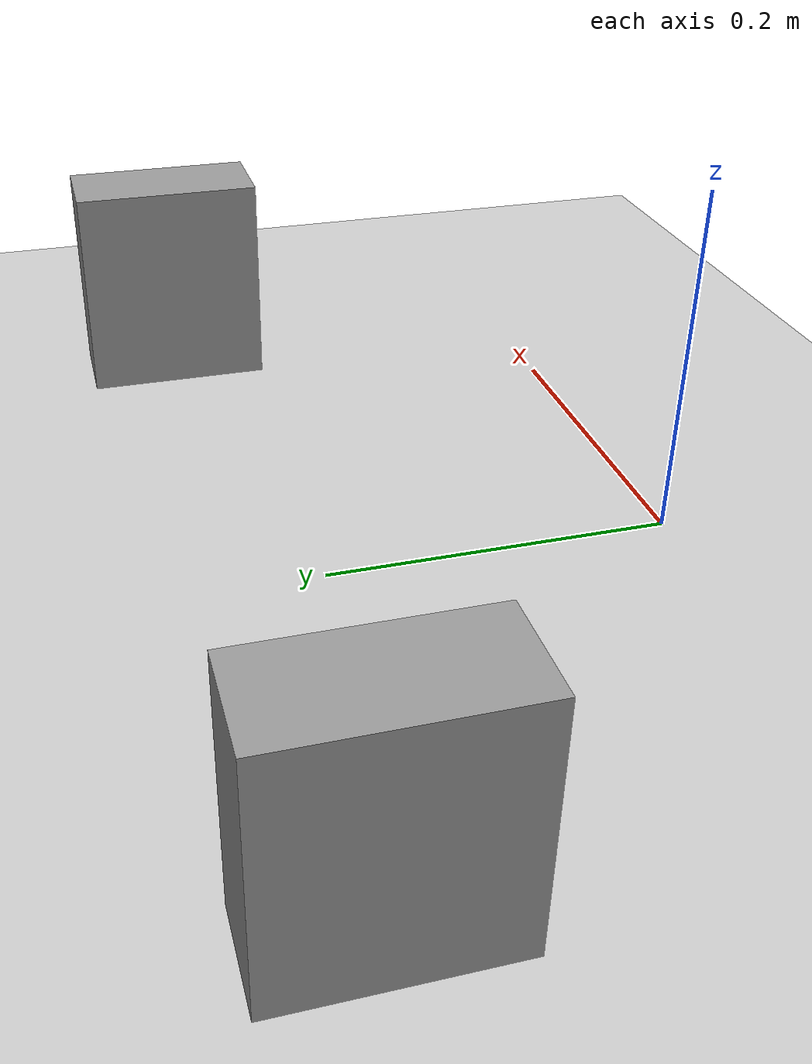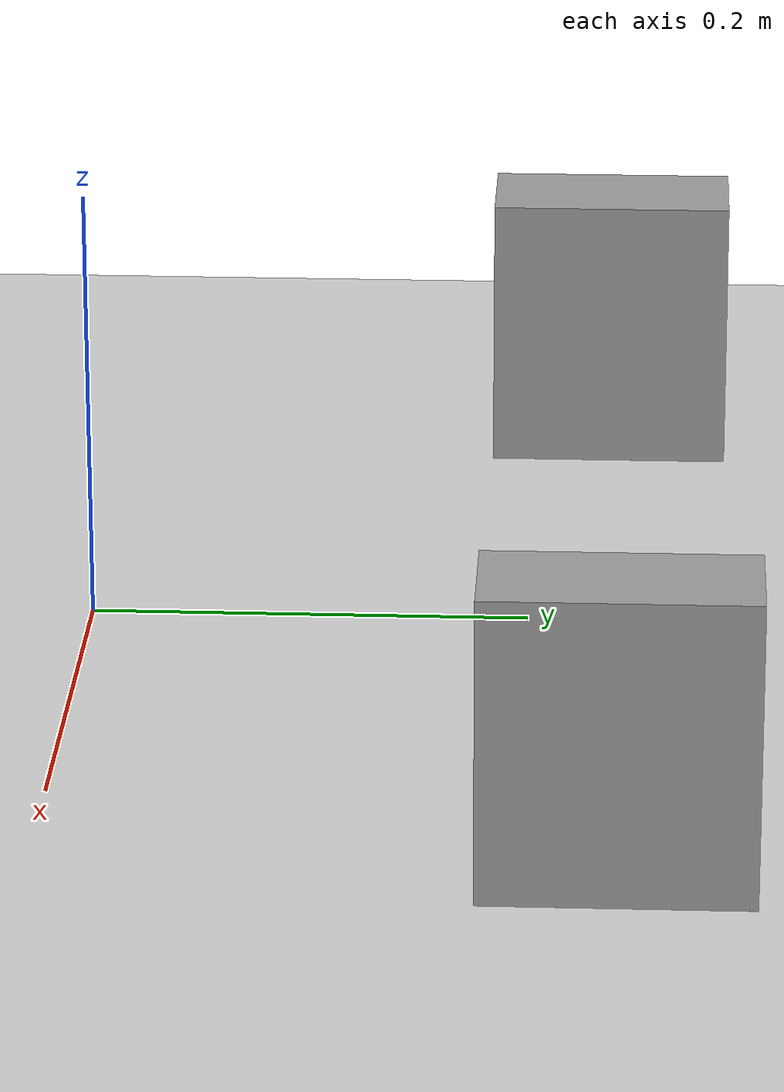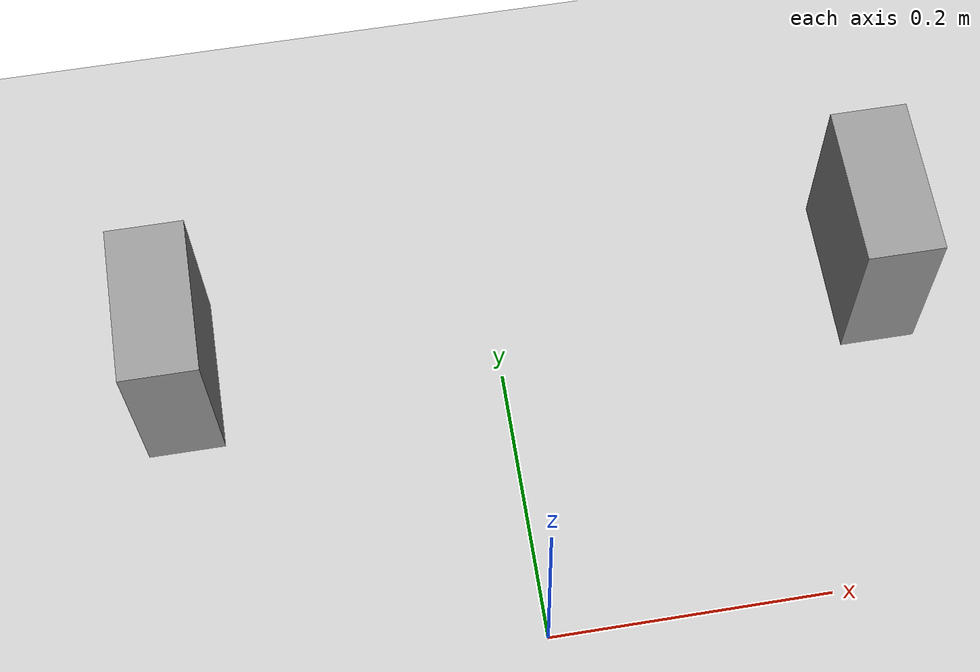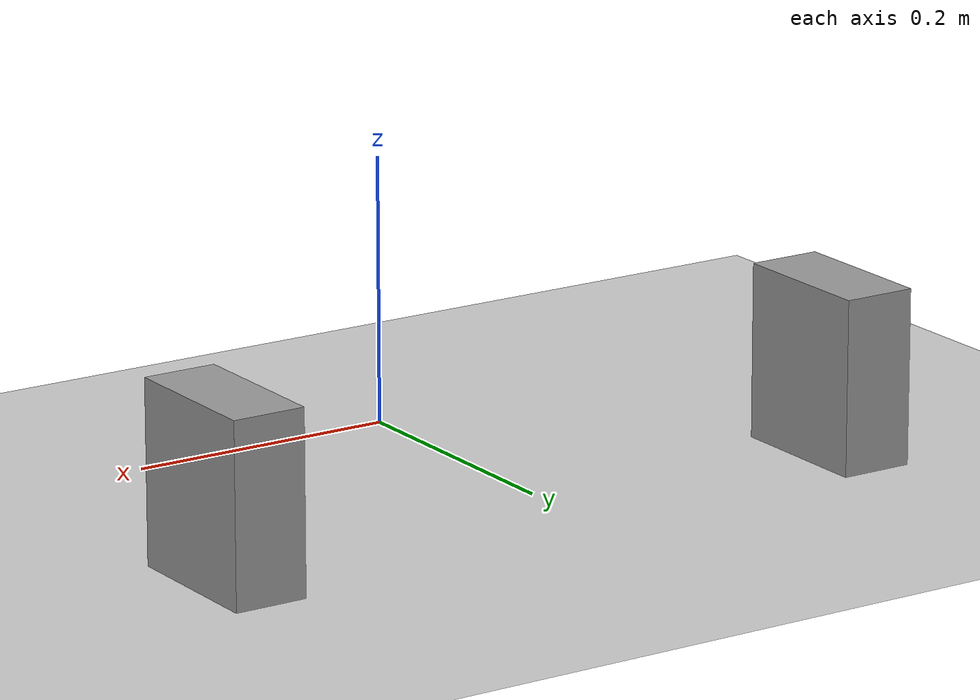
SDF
<sdf version="1.7">
 <world name="gazebo_boxes">
  <light name="sun" type="directional">
   <pose>0 0 10 0 -0 0</pose>
   <diffuse>0.8 0.8 0.8 1</diffuse>
   <specular>0.2 0.2 0.2 1</specular>
   <attenuation>
    <range>1000</range>
    <constant>0.9</constant>
    <linear>0.01</linear>
    <quadratic>0.001</quadratic>
   </attenuation>
   <direction>-0.5 0.1 -0.9</direction>
   <spot><inner_angle>0</inner_angle><outer_angle>0</outer_angle><falloff>0</falloff></spot>
  </light>
  <model name="ground_plane">
   <static>1</static>
   <link name="link">
    <collision name="collision">
     <geometry><plane><normal>0 0 1</normal><size>100 100</size></plane></geometry>
     <surface>
      <contact><collide_bitmask>65535</collide_bitmask></contact>
      <friction><ode><mu>100</mu><mu2>50</mu2></ode></friction>
     </surface>
    </collision>
    <visual name="visual">
     <cast_shadows>0</cast_shadows>
     <geometry><plane><normal>0 0 1</normal><size>100 100</size></plane></geometry>
     <material>
      <script><uri>file://media/materials/scripts/gazebo.material</uri><name>Gazebo/Grey</name></script>
     </material>
    </visual>
   </link>
  </model>
  <gravity>0 0 -9.8</gravity>
  <magnetic_field>6e-06 2.3e-05 -4.2e-05</magnetic_field>
  <atmosphere type="adiabatic"/>
  <physics type="ode">
   <max_step_size>0.001</max_step_size>
   <real_time_factor>1</real_time_factor>
   <real_time_update_rate>1000</real_time_update_rate>
  </physics>
  <scene><ambient>0.4 0.4 0.4 1</ambient><background>0.7 0.7 0.7 1</background><shadows>1</shadows></scene>
  <spherical_coordinates>
   <surface_model>EARTH_WGS84</surface_model>
   <latitude_deg>0</latitude_deg>
   <longitude_deg>0</longitude_deg>
   <elevation>0</elevation>
   <heading_deg>0</heading_deg>
  </spherical_coordinates>
  <model name="unit_box">
   <pose>0.276195 0.243164 0.066818 -2.5e-05 -3e-06 -6e-06</pose>
   <link name="link">
    <inertial>
     <mass>1</mass>
     <inertia>
      <ixx>0.166667</ixx>
      <ixy>0</ixy>
      <ixz>0</ixz>
      <iyy>0.166667</iyy>
      <iyz>0</iyz>
      <izz>0.166667</izz>
     </inertia>
    </inertial>
    <collision name="collision">
     <geometry><box><size>0.054182 0.115584 0.133633</size></box></geometry>
    </collision>
    <visual name="visual">
     <geometry><box><size>0.054182 0.115584 0.133633</size></box></geometry>
     <material>
      <script><name>Gazebo/Grey</name><uri>file://media/materials/scripts/gazebo.material</uri></script>
     </material>
    </visual>
   </link>
  </model>
  <model name="unit_box_0">
   <pose>-0.231843 0.23491 0.065192 2.7e-05 1e-06 7.9e-05</pose>
   <link name="link">
    <inertial>
     <mass>1</mass>
     <inertia>
      <ixx>0.166667</ixx>
      <ixy>0</ixy>
      <ixz>0</ixz>
      <iyy>0.166667</iyy>
      <iyz>0</iyz>
      <izz>0.166667</izz>
     </inertia>
    </inertial>
    <collision name="collision">
     <geometry><box><size>0.054583 0.113796 0.130398</size></box></geometry>
    </collision>
    <visual name="visual">
     <geometry><box><size>0.054583 0.113796 0.130398</size></box></geometry>
     <material>
      <script><name>Gazebo/Grey</name><uri>file://media/materials/scripts/gazebo.material</uri></script>
     </material>
    </visual>
   </link>
  </model>
 </world>
</sdf>
